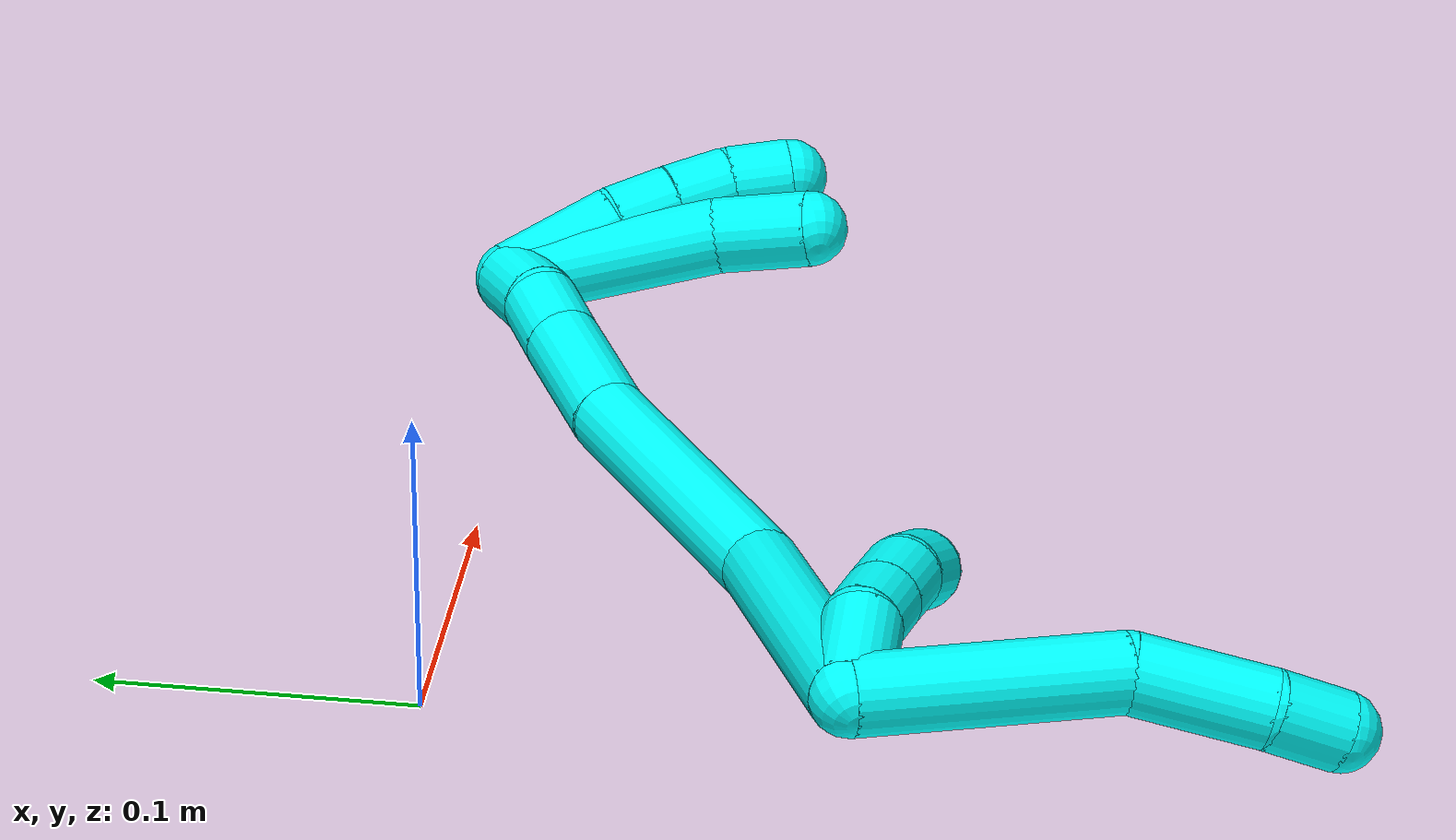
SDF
<sdf version="1.7">
 <world name="default">
  <model name="photoneo_s_sensor">
   <static>1</static>
   <pose>0 0 2 1.57079 1.57079 3.14159</pose>
   <link name="link">
    <inertial><mass>0.1</mass></inertial>
    <sensor name="sensor" type="depth">
     <update_rate>30</update_rate>
     <camera>
      <horizontal_fov>1.22</horizontal_fov>
      <image><width>1920</width><height>1200</height><format>B8G8R8</format></image>
      <clip><near>0.1</near><far>4</far></clip>
      <depth_camera><output>points</output></depth_camera>
     </camera>
     <plugin name="camera_plugin" filename="libgazebo_ros_depth_camera.so">
      <baseline>0.2</baseline>
      <alwaysOn>1</alwaysOn>
      <updateRate>0.0</updateRate>
      <cameraName>camera_ir</cameraName>
      <imageTopicName>/camera/color/image_raw</imageTopicName>
      <cameraInfoTopicName>/camera/color/camera_info</cameraInfoTopicName>
      <depthImageTopicName>/camera/depth/image_raw</depthImageTopicName>
      <depthImageCameraInfoTopicName>/camera/depth/camera_info</depthImageCameraInfoTopicName>
      <pointCloudTopicName>/camera/depth/points</pointCloudTopicName>
      <frameName>fr_optical</frameName>
      <pointCloudCutoff>0.1</pointCloudCutoff>
      <pointCloudCutoffMax>2.0</pointCloudCutoffMax>
      <distortionK1>0</distortionK1>
      <distortionK2>0</distortionK2>
      <distortionK3>0</distortionK3>
      <distortionT1>0</distortionT1>
      <distortionT2>0</distortionT2>
      <CxPrime>0</CxPrime>
      <Cx>0</Cx>
      <Cy>0</Cy>
      <focalLength>0</focalLength>
      <hackBaseline>0</hackBaseline>
     </plugin>
    </sensor>
   </link>
  </model>
  <model name="bin">
   <static>1</static>
   <link name="bottom">
    <collision name="collision-bottom">
     <pose>0 0 -0.01 0 -0 0</pose>
     <geometry><box><size>0.8 0.6 0.02</size></box></geometry>
     <surface>
      <friction><ode><mu>100</mu><mu2>100</mu2></ode></friction>
      <contact><collide_bitmask>65535</collide_bitmask></contact>
     </surface>
    </collision>
   </link>
   <link name="west_wall">
    <collision name="collision-west_wall">
     <pose>-0.41 0 0.1 0 -0 0</pose>
     <geometry><box><size>0.02 0.6 0.2</size></box></geometry>
     <surface>
      <friction><ode><mu>100</mu><mu2>100</mu2></ode></friction>
      <contact><collide_bitmask>65535</collide_bitmask></contact>
     </surface>
    </collision>
   </link>
   <link name="east_wall">
    <collision name="collision-east_wall">
     <pose>0.41 0 0.1 0 -0 0</pose>
     <geometry><box><size>0.02 0.6 0.2</size></box></geometry>
     <surface>
      <friction><ode><mu>100</mu><mu2>100</mu2></ode></friction>
      <contact><collide_bitmask>65535</collide_bitmask></contact>
     </surface>
    </collision>
   </link>
   <link name="south_wall">
    <collision name="collision-south_wall">
     <pose>0 -0.31 0.1 0 -0 0</pose>
     <geometry><box><size>0.8 0.02 0.2</size></box></geometry>
     <surface>
      <friction><ode><mu>100</mu><mu2>100</mu2></ode></friction>
      <contact><collide_bitmask>65535</collide_bitmask></contact>
     </surface>
    </collision>
   </link>
   <link name="north_wall">
    <collision name="collision-north_wall">
     <pose>0 0.31 0.1 0 -0 0</pose>
     <geometry><box><size>0.8 0.02 0.2</size></box></geometry>
     <surface>
      <friction><ode><mu>100</mu><mu2>100</mu2></ode></friction>
      <contact><collide_bitmask>65535</collide_bitmask></contact>
     </surface>
    </collision>
   </link>
  </model>
  <model name="3">
   <static>0</static>
   <link name="3">
    <collision name="collision-cylinder-e_1_2_8">
     <pose>-0.032054 -0.026554 -0.002283 1.65655 -0.877158 -0.944968</pose>
     <geometry><cylinder><radius>0.0125</radius><length>0.083374</length></cylinder></geometry>
     <surface>
      <friction><ode><mu>1.16</mu><mu2>1.16</mu2><slip1>0</slip1><slip2>0</slip2></ode></friction>
      <contact><ode><kp>1e+06</kp><kd>1</kd><max_vel>0</max_vel><min_depth>0.001</min_depth></ode></contact>
     </surface>
    </collision>
    <visual name="visual-cylinder-e_1_2_8">
     <pose>-0.032054 -0.026554 -0.002283 1.65655 -0.877158 -0.944968</pose>
     <geometry><cylinder><radius>0.0125</radius><length>0.083374</length></cylinder></geometry>
     <material><ambient>0.003922 1 0.996078 1</ambient></material>
    </visual>
    <collision name="collision-cylinder-e_2_8_9">
     <pose>-0.077365 -0.068419 -0.01216 2.03127 -0.65974 -1.00879</pose>
     <geometry><cylinder><radius>0.0125</radius><length>0.04326</length></cylinder></geometry>
     <surface>
      <friction><ode><mu>1.16</mu><mu2>1.16</mu2><slip1>0</slip1><slip2>0</slip2></ode></friction>
      <contact><ode><kp>1e+06</kp><kd>1</kd><max_vel>0</max_vel><min_depth>0.001</min_depth></ode></contact>
     </surface>
    </collision>
    <visual name="visual-cylinder-e_2_8_9">
     <pose>-0.077365 -0.068419 -0.01216 2.03127 -0.65974 -1.00879</pose>
     <geometry><cylinder><radius>0.0125</radius><length>0.04326</length></cylinder></geometry>
     <material><ambient>0.003922 1 0.996078 1</ambient></material>
    </visual>
    <collision name="collision-cylinder-e_3_9_6">
     <pose>-0.096348 -0.093573 -0.022368 1.83035 -0.512166 -0.656257</pose>
     <geometry><cylinder><radius>0.0125</radius><length>0.023366</length></cylinder></geometry>
     <surface>
      <friction><ode><mu>1.16</mu><mu2>1.16</mu2><slip1>0</slip1><slip2>0</slip2></ode></friction>
      <contact><ode><kp>1e+06</kp><kd>1</kd><max_vel>0</max_vel><min_depth>0.001</min_depth></ode></contact>
     </surface>
    </collision>
    <visual name="visual-cylinder-e_3_9_6">
     <pose>-0.096348 -0.093573 -0.022368 1.83035 -0.512166 -0.656257</pose>
     <geometry><cylinder><radius>0.0125</radius><length>0.023366</length></cylinder></geometry>
     <material><ambient>0.003922 1 0.996078 1</ambient></material>
    </visual>
    <collision name="collision-cylinder-e_1_2_10">
     <pose>-0.002944 -0.006519 0.015886 0.389412 -0.169814 -0.033566</pose>
     <geometry><cylinder><radius>0.0125</radius><length>0.034845</length></cylinder></geometry>
     <surface>
      <friction><ode><mu>1.16</mu><mu2>1.16</mu2><slip1>0</slip1><slip2>0</slip2></ode></friction>
      <contact><ode><kp>1e+06</kp><kd>1</kd><max_vel>0</max_vel><min_depth>0.001</min_depth></ode></contact>
     </surface>
    </collision>
    <visual name="visual-cylinder-e_1_2_10">
     <pose>-0.002944 -0.006519 0.015886 0.389412 -0.169814 -0.033566</pose>
     <geometry><cylinder><radius>0.0125</radius><length>0.034845</length></cylinder></geometry>
     <material><ambient>0.003922 1 0.996078 1</ambient></material>
    </visual>
    <collision name="collision-cylinder-e_2_10_11">
     <pose>-0.007466 -0.019871 0.03989 0.699699 -0.147609 -0.053941</pose>
     <geometry><cylinder><radius>0.0125</radius><length>0.021454</length></cylinder></geometry>
     <surface>
      <friction><ode><mu>1.16</mu><mu2>1.16</mu2><slip1>0</slip1><slip2>0</slip2></ode></friction>
      <contact><ode><kp>1e+06</kp><kd>1</kd><max_vel>0</max_vel><min_depth>0.001</min_depth></ode></contact>
     </surface>
    </collision>
    <visual name="visual-cylinder-e_2_10_11">
     <pose>-0.007466 -0.019871 0.03989 0.699699 -0.147609 -0.053941</pose>
     <geometry><cylinder><radius>0.0125</radius><length>0.021454</length></cylinder></geometry>
     <material><ambient>0.003922 1 0.996078 1</ambient></material>
    </visual>
    <collision name="collision-cylinder-e_3_11_12">
     <pose>-0.010883 -0.033822 0.056304 0.709094 -0.166653 -0.061817</pose>
     <geometry><cylinder><radius>0.0125</radius><length>0.022171</length></cylinder></geometry>
     <surface>
      <friction><ode><mu>1.16</mu><mu2>1.16</mu2><slip1>0</slip1><slip2>0</slip2></ode></friction>
      <contact><ode><kp>1e+06</kp><kd>1</kd><max_vel>0</max_vel><min_depth>0.001</min_depth></ode></contact>
     </surface>
    </collision>
    <visual name="visual-cylinder-e_3_11_12">
     <pose>-0.010883 -0.033822 0.056304 0.709094 -0.166653 -0.061817</pose>
     <geometry><cylinder><radius>0.0125</radius><length>0.022171</length></cylinder></geometry>
     <material><ambient>0.003922 1 0.996078 1</ambient></material>
    </visual>
    <collision name="collision-cylinder-e_4_12_5">
     <pose>-0.012725 -0.049496 0.071135 0.91853 -0.000318 -0.000157</pose>
     <geometry><cylinder><radius>0.0125</radius><length>0.02153</length></cylinder></geometry>
     <surface>
      <friction><ode><mu>1.16</mu><mu2>1.16</mu2><slip1>0</slip1><slip2>0</slip2></ode></friction>
      <contact><ode><kp>1e+06</kp><kd>1</kd><max_vel>0</max_vel><min_depth>0.001</min_depth></ode></contact>
     </surface>
    </collision>
    <visual name="visual-cylinder-e_4_12_5">
     <pose>-0.012725 -0.049496 0.071135 0.91853 -0.000318 -0.000157</pose>
     <geometry><cylinder><radius>0.0125</radius><length>0.02153</length></cylinder></geometry>
     <material><ambient>0.003922 1 0.996078 1</ambient></material>
    </visual>
    <collision name="collision-cylinder-e_1_2_13">
     <pose>0.014587 -0.019746 0.048854 0.384107 0.270065 0.052823</pose>
     <geometry><cylinder><radius>0.0125</radius><length>0.109352</length></cylinder></geometry>
     <surface>
      <friction><ode><mu>1.16</mu><mu2>1.16</mu2><slip1>0</slip1><slip2>0</slip2></ode></friction>
      <contact><ode><kp>1e+06</kp><kd>1</kd><max_vel>0</max_vel><min_depth>0.001</min_depth></ode></contact>
     </surface>
    </collision>
    <visual name="visual-cylinder-e_1_2_13">
     <pose>0.014587 -0.019746 0.048854 0.384107 0.270065 0.052823</pose>
     <geometry><cylinder><radius>0.0125</radius><length>0.109352</length></cylinder></geometry>
     <material><ambient>0.003922 1 0.996078 1</ambient></material>
    </visual>
    <collision name="collision-cylinder-e_2_13_14">
     <pose>0.046482 -0.041846 0.144997 0.049733 0.35047 0.008807</pose>
     <geometry><cylinder><radius>0.0125</radius><length>0.100821</length></cylinder></geometry>
     <surface>
      <friction><ode><mu>1.16</mu><mu2>1.16</mu2><slip1>0</slip1><slip2>0</slip2></ode></friction>
      <contact><ode><kp>1e+06</kp><kd>1</kd><max_vel>0</max_vel><min_depth>0.001</min_depth></ode></contact>
     </surface>
    </collision>
    <visual name="visual-cylinder-e_2_13_14">
     <pose>0.046482 -0.041846 0.144997 0.049733 0.35047 0.008807</pose>
     <geometry><cylinder><radius>0.0125</radius><length>0.100821</length></cylinder></geometry>
     <material><ambient>0.003922 1 0.996078 1</ambient></material>
    </visual>
    <collision name="collision-cylinder-e_3_14_15">
     <pose>0.068012 -0.045383 0.213313 0.056206 0.197819 0.005579</pose>
     <geometry><cylinder><radius>0.0125</radius><length>0.042961</length></cylinder></geometry>
     <surface>
      <friction><ode><mu>1.16</mu><mu2>1.16</mu2><slip1>0</slip1><slip2>0</slip2></ode></friction>
      <contact><ode><kp>1e+06</kp><kd>1</kd><max_vel>0</max_vel><min_depth>0.001</min_depth></ode></contact>
     </surface>
    </collision>
    <visual name="visual-cylinder-e_3_14_15">
     <pose>0.068012 -0.045383 0.213313 0.056206 0.197819 0.005579</pose>
     <geometry><cylinder><radius>0.0125</radius><length>0.042961</length></cylinder></geometry>
     <material><ambient>0.003922 1 0.996078 1</ambient></material>
    </visual>
    <collision name="collision-cylinder-e_4_15_16">
     <pose>0.074166 -0.047078 0.245542 0.045659 0.170668 0.003906</pose>
     <geometry><cylinder><radius>0.0125</radius><length>0.022756</length></cylinder></geometry>
     <surface>
      <friction><ode><mu>1.16</mu><mu2>1.16</mu2><slip1>0</slip1><slip2>0</slip2></ode></friction>
      <contact><ode><kp>1e+06</kp><kd>1</kd><max_vel>0</max_vel><min_depth>0.001</min_depth></ode></contact>
     </surface>
    </collision>
    <visual name="visual-cylinder-e_4_15_16">
     <pose>0.074166 -0.047078 0.245542 0.045659 0.170668 0.003906</pose>
     <geometry><cylinder><radius>0.0125</radius><length>0.022756</length></cylinder></geometry>
     <material><ambient>0.003922 1 0.996078 1</ambient></material>
    </visual>
    <collision name="collision-cylinder-e_5_16_1">
     <pose>0.080531 -0.050146 0.267658 0.230073 0.376504 0.044018</pose>
     <geometry><cylinder><radius>0.0125</radius><length>0.02411</length></cylinder></geometry>
     <surface>
      <friction><ode><mu>1.16</mu><mu2>1.16</mu2><slip1>0</slip1><slip2>0</slip2></ode></friction>
      <contact><ode><kp>1e+06</kp><kd>1</kd><max_vel>0</max_vel><min_depth>0.001</min_depth></ode></contact>
     </surface>
    </collision>
    <visual name="visual-cylinder-e_5_16_1">
     <pose>0.080531 -0.050146 0.267658 0.230073 0.376504 0.044018</pose>
     <geometry><cylinder><radius>0.0125</radius><length>0.02411</length></cylinder></geometry>
     <material><ambient>0.003922 1 0.996078 1</ambient></material>
    </visual>
    <collision name="collision-cylinder-e_1_1_17">
     <pose>0.067556 -0.059931 0.283227 0.998742 -1.11205 -0.653647</pose>
     <geometry><cylinder><radius>0.0125</radius><length>0.038829</length></cylinder></geometry>
     <surface>
      <friction><ode><mu>1.16</mu><mu2>1.16</mu2><slip1>0</slip1><slip2>0</slip2></ode></friction>
      <contact><ode><kp>1e+06</kp><kd>1</kd><max_vel>0</max_vel><min_depth>0.001</min_depth></ode></contact>
     </surface>
    </collision>
    <visual name="visual-cylinder-e_1_1_17">
     <pose>0.067556 -0.059931 0.283227 0.998742 -1.11205 -0.653647</pose>
     <geometry><cylinder><radius>0.0125</radius><length>0.038829</length></cylinder></geometry>
     <material><ambient>0.003922 1 0.996078 1</ambient></material>
    </visual>
    <collision name="collision-cylinder-e_2_17_18">
     <pose>0.041288 -0.072178 0.289592 1.24235 -1.03163 -0.771006</pose>
     <geometry><cylinder><radius>0.0125</radius><length>0.020652</length></cylinder></geometry>
     <surface>
      <friction><ode><mu>1.16</mu><mu2>1.16</mu2><slip1>0</slip1><slip2>0</slip2></ode></friction>
      <contact><ode><kp>1e+06</kp><kd>1</kd><max_vel>0</max_vel><min_depth>0.001</min_depth></ode></contact>
     </surface>
    </collision>
    <visual name="visual-cylinder-e_2_17_18">
     <pose>0.041288 -0.072178 0.289592 1.24235 -1.03163 -0.771006</pose>
     <geometry><cylinder><radius>0.0125</radius><length>0.020652</length></cylinder></geometry>
     <material><ambient>0.003922 1 0.996078 1</ambient></material>
    </visual>
    <collision name="collision-cylinder-e_3_18_19">
     <pose>0.023883 -0.082439 0.292693 1.31152 -1.00509 -0.800067</pose>
     <geometry><cylinder><radius>0.0125</radius><length>0.020241</length></cylinder></geometry>
     <surface>
      <friction><ode><mu>1.16</mu><mu2>1.16</mu2><slip1>0</slip1><slip2>0</slip2></ode></friction>
      <contact><ode><kp>1e+06</kp><kd>1</kd><max_vel>0</max_vel><min_depth>0.001</min_depth></ode></contact>
     </surface>
    </collision>
    <visual name="visual-cylinder-e_3_18_19">
     <pose>0.023883 -0.082439 0.292693 1.31152 -1.00509 -0.800067</pose>
     <geometry><cylinder><radius>0.0125</radius><length>0.020241</length></cylinder></geometry>
     <material><ambient>0.003922 1 0.996078 1</ambient></material>
    </visual>
    <collision name="collision-cylinder-e_4_19_4">
     <pose>0.006858 -0.09317 0.293207 1.7291 -0.99071 -1.1292</pose>
     <geometry><cylinder><radius>0.0125</radius><length>0.020278</length></cylinder></geometry>
     <surface>
      <friction><ode><mu>1.16</mu><mu2>1.16</mu2><slip1>0</slip1><slip2>0</slip2></ode></friction>
      <contact><ode><kp>1e+06</kp><kd>1</kd><max_vel>0</max_vel><min_depth>0.001</min_depth></ode></contact>
     </surface>
    </collision>
    <visual name="visual-cylinder-e_4_19_4">
     <pose>0.006858 -0.09317 0.293207 1.7291 -0.99071 -1.1292</pose>
     <geometry><cylinder><radius>0.0125</radius><length>0.020278</length></cylinder></geometry>
     <material><ambient>0.003922 1 0.996078 1</ambient></material>
    </visual>
    <collision name="collision-cylinder-e_1_1_20">
     <pose>0.05418 -0.067805 0.275372 1.77971 -1.10595 -1.30199</pose>
     <geometry><cylinder><radius>0.0125</radius><length>0.068875</length></cylinder></geometry>
     <surface>
      <friction><ode><mu>1.16</mu><mu2>1.16</mu2><slip1>0</slip1><slip2>0</slip2></ode></friction>
      <contact><ode><kp>1e+06</kp><kd>1</kd><max_vel>0</max_vel><min_depth>0.001</min_depth></ode></contact>
     </surface>
    </collision>
    <visual name="visual-cylinder-e_1_1_20">
     <pose>0.05418 -0.067805 0.275372 1.77971 -1.10595 -1.30199</pose>
     <geometry><cylinder><radius>0.0125</radius><length>0.068875</length></cylinder></geometry>
     <material><ambient>0.003922 1 0.996078 1</ambient></material>
    </visual>
    <collision name="collision-cylinder-e_2_20_3">
     <pose>0.009786 -0.088394 0.266988 2.3276 -1.0645 -1.87793</pose>
     <geometry><cylinder><radius>0.0125</radius><length>0.031125</length></cylinder></geometry>
     <surface>
      <friction><ode><mu>1.16</mu><mu2>1.16</mu2><slip1>0</slip1><slip2>0</slip2></ode></friction>
      <contact><ode><kp>1e+06</kp><kd>1</kd><max_vel>0</max_vel><min_depth>0.001</min_depth></ode></contact>
     </surface>
    </collision>
    <visual name="visual-cylinder-e_2_20_3">
     <pose>0.009786 -0.088394 0.266988 2.3276 -1.0645 -1.87793</pose>
     <geometry><cylinder><radius>0.0125</radius><length>0.031125</length></cylinder></geometry>
     <material><ambient>0.003922 1 0.996078 1</ambient></material>
    </visual>
    <collision name="collision-sphere-3">
     <pose>-0.003824 -0.093881 0.261806 0 -0 0</pose>
     <geometry><sphere><radius>0.0125</radius></sphere></geometry>
     <surface>
      <friction><ode><mu>1.16</mu><mu2>1.16</mu2><slip1>0</slip1><slip2>0</slip2></ode></friction>
      <contact><ode><kp>1e+06</kp><kd>1</kd><max_vel>0</max_vel><min_depth>0.001</min_depth></ode></contact>
     </surface>
    </collision>
    <visual name="visual-sphere-3">
     <pose>-0.003824 -0.093881 0.261806 0 -0 0</pose>
     <geometry><sphere><radius>0.0125</radius></sphere></geometry>
     <material><ambient>0.003922 1 0.996078 1</ambient></material>
    </visual>
    <collision name="collision-sphere-20">
     <pose>0.023396 -0.082907 0.27217 0 -0 0</pose>
     <geometry><sphere><radius>0.0125</radius></sphere></geometry>
     <surface>
      <friction><ode><mu>1.16</mu><mu2>1.16</mu2><slip1>0</slip1><slip2>0</slip2></ode></friction>
      <contact><ode><kp>1e+06</kp><kd>1</kd><max_vel>0</max_vel><min_depth>0.001</min_depth></ode></contact>
     </surface>
    </collision>
    <visual name="visual-sphere-20">
     <pose>0.023396 -0.082907 0.27217 0 -0 0</pose>
     <geometry><sphere><radius>0.0125</radius></sphere></geometry>
     <material><ambient>0.003922 1 0.996078 1</ambient></material>
    </visual>
    <collision name="collision-sphere-4">
     <pose>-0.001622 -0.098658 0.292331 0 -0 0</pose>
     <geometry><sphere><radius>0.0125</radius></sphere></geometry>
     <surface>
      <friction><ode><mu>1.16</mu><mu2>1.16</mu2><slip1>0</slip1><slip2>0</slip2></ode></friction>
      <contact><ode><kp>1e+06</kp><kd>1</kd><max_vel>0</max_vel><min_depth>0.001</min_depth></ode></contact>
     </surface>
    </collision>
    <visual name="visual-sphere-4">
     <pose>-0.001622 -0.098658 0.292331 0 -0 0</pose>
     <geometry><sphere><radius>0.0125</radius></sphere></geometry>
     <material><ambient>0.003922 1 0.996078 1</ambient></material>
    </visual>
    <collision name="collision-sphere-11">
     <pose>-0.009044 -0.026704 0.048007 0 -0 0</pose>
     <geometry><sphere><radius>0.0125</radius></sphere></geometry>
     <surface>
      <friction><ode><mu>1.16</mu><mu2>1.16</mu2><slip1>0</slip1><slip2>0</slip2></ode></friction>
      <contact><ode><kp>1e+06</kp><kd>1</kd><max_vel>0</max_vel><min_depth>0.001</min_depth></ode></contact>
     </surface>
    </collision>
    <visual name="visual-sphere-11">
     <pose>-0.009044 -0.026704 0.048007 0 -0 0</pose>
     <geometry><sphere><radius>0.0125</radius></sphere></geometry>
     <material><ambient>0.003922 1 0.996078 1</ambient></material>
    </visual>
    <collision name="collision-sphere-10">
     <pose>-0.005889 -0.013038 0.031772 0 -0 0</pose>
     <geometry><sphere><radius>0.0125</radius></sphere></geometry>
     <surface>
      <friction><ode><mu>1.16</mu><mu2>1.16</mu2><slip1>0</slip1><slip2>0</slip2></ode></friction>
      <contact><ode><kp>1e+06</kp><kd>1</kd><max_vel>0</max_vel><min_depth>0.001</min_depth></ode></contact>
     </surface>
    </collision>
    <visual name="visual-sphere-10">
     <pose>-0.005889 -0.013038 0.031772 0 -0 0</pose>
     <geometry><sphere><radius>0.0125</radius></sphere></geometry>
     <material><ambient>0.003922 1 0.996078 1</ambient></material>
    </visual>
    <collision name="collision-sphere-6">
     <pose>-0.102074 -0.103416 -0.024982 0 -0 0</pose>
     <geometry><sphere><radius>0.0125</radius></sphere></geometry>
     <surface>
      <friction><ode><mu>1.16</mu><mu2>1.16</mu2><slip1>0</slip1><slip2>0</slip2></ode></friction>
      <contact><ode><kp>1e+06</kp><kd>1</kd><max_vel>0</max_vel><min_depth>0.001</min_depth></ode></contact>
     </surface>
    </collision>
    <visual name="visual-sphere-6">
     <pose>-0.102074 -0.103416 -0.024982 0 -0 0</pose>
     <geometry><sphere><radius>0.0125</radius></sphere></geometry>
     <material><ambient>0.003922 1 0.996078 1</ambient></material>
    </visual>
    <collision name="collision-sphere-9">
     <pose>-0.090623 -0.08373 -0.019755 0 -0 0</pose>
     <geometry><sphere><radius>0.0125</radius></sphere></geometry>
     <surface>
      <friction><ode><mu>1.16</mu><mu2>1.16</mu2><slip1>0</slip1><slip2>0</slip2></ode></friction>
      <contact><ode><kp>1e+06</kp><kd>1</kd><max_vel>0</max_vel><min_depth>0.001</min_depth></ode></contact>
     </surface>
    </collision>
    <visual name="visual-sphere-9">
     <pose>-0.090623 -0.08373 -0.019755 0 -0 0</pose>
     <geometry><sphere><radius>0.0125</radius></sphere></geometry>
     <material><ambient>0.003922 1 0.996078 1</ambient></material>
    </visual>
    <collision name="collision-sphere-2">
     <geometry><sphere><radius>0.0125</radius></sphere></geometry>
     <surface>
      <friction><ode><mu>1.16</mu><mu2>1.16</mu2><slip1>0</slip1><slip2>0</slip2></ode></friction>
      <contact><ode><kp>1e+06</kp><kd>1</kd><max_vel>0</max_vel><min_depth>0.001</min_depth></ode></contact>
     </surface>
    </collision>
    <visual name="visual-sphere-2">
     <geometry><sphere><radius>0.0125</radius></sphere></geometry>
     <material><ambient>0.003922 1 0.996078 1</ambient></material>
    </visual>
    <collision name="collision-sphere-19">
     <pose>0.015339 -0.087683 0.294083 0 -0 0</pose>
     <geometry><sphere><radius>0.0125</radius></sphere></geometry>
     <surface>
      <friction><ode><mu>1.16</mu><mu2>1.16</mu2><slip1>0</slip1><slip2>0</slip2></ode></friction>
      <contact><ode><kp>1e+06</kp><kd>1</kd><max_vel>0</max_vel><min_depth>0.001</min_depth></ode></contact>
     </surface>
    </collision>
    <visual name="visual-sphere-19">
     <pose>0.015339 -0.087683 0.294083 0 -0 0</pose>
     <geometry><sphere><radius>0.0125</radius></sphere></geometry>
     <material><ambient>0.003922 1 0.996078 1</ambient></material>
    </visual>
    <collision name="collision-sphere-8">
     <pose>-0.064108 -0.053108 -0.004565 0 -0 0</pose>
     <geometry><sphere><radius>0.0125</radius></sphere></geometry>
     <surface>
      <friction><ode><mu>1.16</mu><mu2>1.16</mu2><slip1>0</slip1><slip2>0</slip2></ode></friction>
      <contact><ode><kp>1e+06</kp><kd>1</kd><max_vel>0</max_vel><min_depth>0.001</min_depth></ode></contact>
     </surface>
    </collision>
    <visual name="visual-sphere-8">
     <pose>-0.064108 -0.053108 -0.004565 0 -0 0</pose>
     <geometry><sphere><radius>0.0125</radius></sphere></geometry>
     <material><ambient>0.003922 1 0.996078 1</ambient></material>
    </visual>
    <collision name="collision-sphere-12">
     <pose>-0.012722 -0.040941 0.064601 0 -0 0</pose>
     <geometry><sphere><radius>0.0125</radius></sphere></geometry>
     <surface>
      <friction><ode><mu>1.16</mu><mu2>1.16</mu2><slip1>0</slip1><slip2>0</slip2></ode></friction>
      <contact><ode><kp>1e+06</kp><kd>1</kd><max_vel>0</max_vel><min_depth>0.001</min_depth></ode></contact>
     </surface>
    </collision>
    <visual name="visual-sphere-12">
     <pose>-0.012722 -0.040941 0.064601 0 -0 0</pose>
     <geometry><sphere><radius>0.0125</radius></sphere></geometry>
     <material><ambient>0.003922 1 0.996078 1</ambient></material>
    </visual>
    <collision name="collision-sphere-5">
     <pose>-0.012729 -0.058051 0.077669 0 -0 0</pose>
     <geometry><sphere><radius>0.0125</radius></sphere></geometry>
     <surface>
      <friction><ode><mu>1.16</mu><mu2>1.16</mu2><slip1>0</slip1><slip2>0</slip2></ode></friction>
      <contact><ode><kp>1e+06</kp><kd>1</kd><max_vel>0</max_vel><min_depth>0.001</min_depth></ode></contact>
     </surface>
    </collision>
    <visual name="visual-sphere-5">
     <pose>-0.012729 -0.058051 0.077669 0 -0 0</pose>
     <geometry><sphere><radius>0.0125</radius></sphere></geometry>
     <material><ambient>0.003922 1 0.996078 1</ambient></material>
    </visual>
    <collision name="collision-sphere-13">
     <pose>0.029174 -0.039492 0.097709 0 -0 0</pose>
     <geometry><sphere><radius>0.0125</radius></sphere></geometry>
     <surface>
      <friction><ode><mu>1.16</mu><mu2>1.16</mu2><slip1>0</slip1><slip2>0</slip2></ode></friction>
      <contact><ode><kp>1e+06</kp><kd>1</kd><max_vel>0</max_vel><min_depth>0.001</min_depth></ode></contact>
     </surface>
    </collision>
    <visual name="visual-sphere-13">
     <pose>0.029174 -0.039492 0.097709 0 -0 0</pose>
     <geometry><sphere><radius>0.0125</radius></sphere></geometry>
     <material><ambient>0.003922 1 0.996078 1</ambient></material>
    </visual>
    <collision name="collision-sphere-14">
     <pose>0.06379 -0.0442 0.192285 0 -0 0</pose>
     <geometry><sphere><radius>0.0125</radius></sphere></geometry>
     <surface>
      <friction><ode><mu>1.16</mu><mu2>1.16</mu2><slip1>0</slip1><slip2>0</slip2></ode></friction>
      <contact><ode><kp>1e+06</kp><kd>1</kd><max_vel>0</max_vel><min_depth>0.001</min_depth></ode></contact>
     </surface>
    </collision>
    <visual name="visual-sphere-14">
     <pose>0.06379 -0.0442 0.192285 0 -0 0</pose>
     <geometry><sphere><radius>0.0125</radius></sphere></geometry>
     <material><ambient>0.003922 1 0.996078 1</ambient></material>
    </visual>
    <collision name="collision-sphere-15">
     <pose>0.072234 -0.046566 0.234341 0 -0 0</pose>
     <geometry><sphere><radius>0.0125</radius></sphere></geometry>
     <surface>
      <friction><ode><mu>1.16</mu><mu2>1.16</mu2><slip1>0</slip1><slip2>0</slip2></ode></friction>
      <contact><ode><kp>1e+06</kp><kd>1</kd><max_vel>0</max_vel><min_depth>0.001</min_depth></ode></contact>
     </surface>
    </collision>
    <visual name="visual-sphere-15">
     <pose>0.072234 -0.046566 0.234341 0 -0 0</pose>
     <geometry><sphere><radius>0.0125</radius></sphere></geometry>
     <material><ambient>0.003922 1 0.996078 1</ambient></material>
    </visual>
    <collision name="collision-sphere-16">
     <pose>0.076098 -0.04759 0.256743 0 -0 0</pose>
     <geometry><sphere><radius>0.0125</radius></sphere></geometry>
     <surface>
      <friction><ode><mu>1.16</mu><mu2>1.16</mu2><slip1>0</slip1><slip2>0</slip2></ode></friction>
      <contact><ode><kp>1e+06</kp><kd>1</kd><max_vel>0</max_vel><min_depth>0.001</min_depth></ode></contact>
     </surface>
    </collision>
    <visual name="visual-sphere-16">
     <pose>0.076098 -0.04759 0.256743 0 -0 0</pose>
     <geometry><sphere><radius>0.0125</radius></sphere></geometry>
     <material><ambient>0.003922 1 0.996078 1</ambient></material>
    </visual>
    <collision name="collision-sphere-1">
     <pose>0.084963 -0.052703 0.278573 0 -0 0</pose>
     <geometry><sphere><radius>0.0125</radius></sphere></geometry>
     <surface>
      <friction><ode><mu>1.16</mu><mu2>1.16</mu2><slip1>0</slip1><slip2>0</slip2></ode></friction>
      <contact><ode><kp>1e+06</kp><kd>1</kd><max_vel>0</max_vel><min_depth>0.001</min_depth></ode></contact>
     </surface>
    </collision>
    <visual name="visual-sphere-1">
     <pose>0.084963 -0.052703 0.278573 0 -0 0</pose>
     <geometry><sphere><radius>0.0125</radius></sphere></geometry>
     <material><ambient>0.003922 1 0.996078 1</ambient></material>
    </visual>
    <collision name="collision-sphere-18">
     <pose>0.032427 -0.077196 0.291302 0 -0 0</pose>
     <geometry><sphere><radius>0.0125</radius></sphere></geometry>
     <surface>
      <friction><ode><mu>1.16</mu><mu2>1.16</mu2><slip1>0</slip1><slip2>0</slip2></ode></friction>
      <contact><ode><kp>1e+06</kp><kd>1</kd><max_vel>0</max_vel><min_depth>0.001</min_depth></ode></contact>
     </surface>
    </collision>
    <visual name="visual-sphere-18">
     <pose>0.032427 -0.077196 0.291302 0 -0 0</pose>
     <geometry><sphere><radius>0.0125</radius></sphere></geometry>
     <material><ambient>0.003922 1 0.996078 1</ambient></material>
    </visual>
    <collision name="collision-sphere-17">
     <pose>0.050149 -0.067159 0.287882 0 -0 0</pose>
     <geometry><sphere><radius>0.0125</radius></sphere></geometry>
     <surface>
      <friction><ode><mu>1.16</mu><mu2>1.16</mu2><slip1>0</slip1><slip2>0</slip2></ode></friction>
      <contact><ode><kp>1e+06</kp><kd>1</kd><max_vel>0</max_vel><min_depth>0.001</min_depth></ode></contact>
     </surface>
    </collision>
    <visual name="visual-sphere-17">
     <pose>0.050149 -0.067159 0.287882 0 -0 0</pose>
     <geometry><sphere><radius>0.0125</radius></sphere></geometry>
     <material><ambient>0.003922 1 0.996078 1</ambient></material>
    </visual>
    <inertial>
     <pose>0.015891 -0.046979 0.133654 0 -0 0</pose>
     <mass>0.75</mass>
     <inertia>
      <ixx>0.000184</ixx>
      <ixy>0</ixy>
      <ixz>0</ixz>
      <iyy>0.000213</iyy>
      <iyz>0</iyz>
      <izz>0.00016</izz>
     </inertia>
    </inertial>
   </link>
   <pose>-0.028815 -0.132028 0.03604 1.25779 0.643422 1.76571</pose>
  </model>
 </world>
</sdf>
